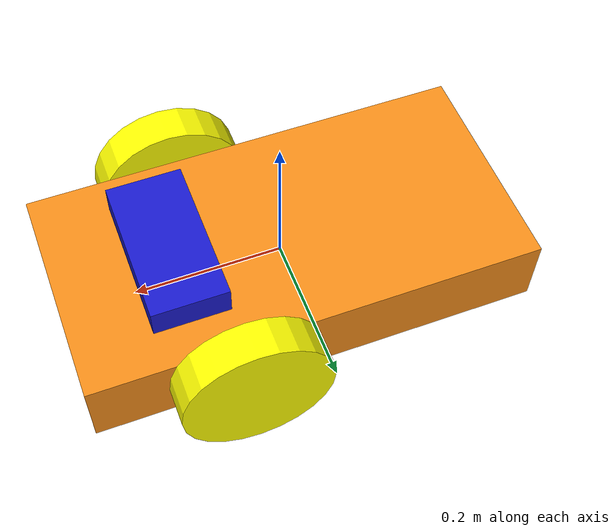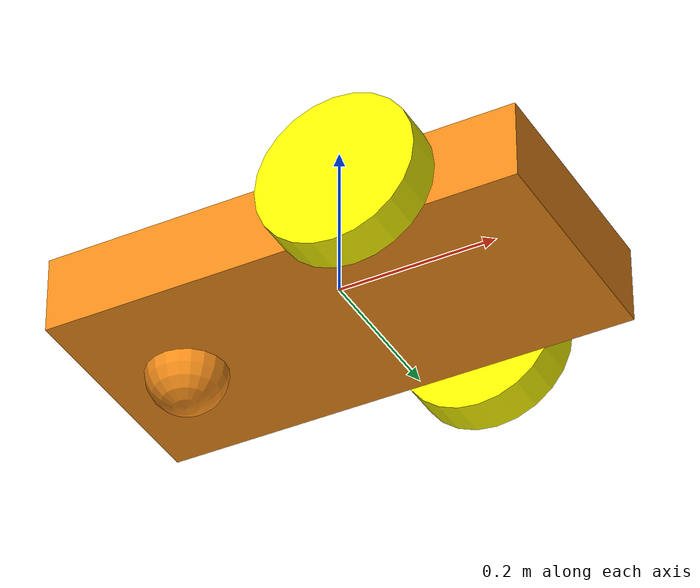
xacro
<?xml version='1.0'?>

<!-- This is a URDF description file of a mobile robot, written by Muhammad Asem, m7mad3asem@gmail.com
It models: 1-Chassis with Caster Wheel 2-Left wheel 3-right Wheel  4-Kinect /-->

<robot xmlns:xacro="http://www.ros.org/wiki/xacro" name="rover">
    <xacro:include filename="$(find mybot_description)/urdf/mybot.gazebo" />

<!-- +++++++++++++++++++++++Robot Definition+++++++++++++++++++++++++ /-->

<!--Chassis & Caster Link /-->

 <link name='chassis'>

   <visual name='chassis_visual'>

      <origin xyz="0 0 0" rpy=" 0 0 0"/>

      <geometry>
        <box size=".6 .3 .1"/>
      </geometry>

    </visual>

   <inertial>

      <mass value="10.0"/>
      <origin xyz="0 0 0" rpy=" 0 0 0"/>
      <inertia
          ixx="0.5" ixy="0" ixz="0"
          iyy="1.0" iyz="0"
          izz="0.1"
      />

   </inertial>

   <collision name='collision'>
      <geometry>
        <box size=".6 .3 .1"/>
      </geometry>
   </collision>

 <collision name='caster_collision'>
    <origin xyz="-0.2 0 -0.05" rpy=" 0 0 0"/>

    <geometry>
        <sphere radius="0.05"/>
    </geometry>

    <surface>

        <friction>
          <ode>
            <mu>0</mu>
            <mu2>0</mu2>
            <slip1>1.0</slip1>
            <slip2>1.0</slip2>
          </ode>
        </friction>

     </surface>

 </collision>

<visual name='caster_visual'>

     <origin xyz="-0.2 0 -0.05" rpy=" 0 0 0"/>

     <geometry>
      <sphere radius="0.05"/>
     </geometry>

</visual>

</link>

<!-- ++++++++++++++++Left wheel+++++++++++++++++++++++++++++++ /-->

<!--left wheel Joint /-->

  <joint type="continuous" name="left_wheel_hinge">
    <origin xyz="0.1 0.175 0" rpy="0 0 0"/>
    <child link="left_wheel"/>
    <parent link="chassis"/>
    <axis xyz="0 1 0" rpy="0 0 0"/>
    <limit effort="100" velocity="100"/>
    <joint_properties damping="0.0" friction="0.0"/>
  </joint>

<!--left wheel Link /-->

 <link name="left_wheel">

    <visual name="left_wheel_visual">
      <origin xyz="0 0 0" rpy="0 1.5707 1.5707"/>
      <geometry>
        <cylinder radius="0.1" length="0.05"/>
      </geometry>
      <material name="yellow">
        <color rgba="1 1 0 1" />
      </material>
    </visual>

    <collision name="collision">
      <origin xyz="0 0 0" rpy="0 1.5707 1.5707"/>
      <geometry>
        <cylinder radius="0.1" length="0.05"/>
      </geometry>
    </collision>

    <inertial>
      <origin xyz="0 0 0" rpy="0 1.5707 1.5707"/>
      <mass value="5"/>
      <cylinder_inertia m="5" r="0.1" h="0.05"/>
      <inertia
        ixx="1.0" ixy="0.0" ixz="0.0"
        iyy="1.0" iyz="0.0"
        izz="1.0"/>
    </inertial>

 </link>

<!-- +++++++++++++++++++ Right Wheel +++++++++++++++++++++++++++++++++ /-->

<!--Right wheel joint/-->
  <joint type="continuous" name="right_wheel_hinge">

    <origin xyz="0.1 -0.175 0" rpy="0 0 0"/>

    <child link="right_wheel"/>
    <parent link="chassis"/>

    <axis xyz="0 1 0" rpy="0 0 0"/>

    <limit effort="100" velocity="100"/>

    <joint_properties damping="0.0" friction="0.0"/>

  </joint>

<!--Right Wheel link /-->

  <link name="right_wheel">

    <visual name="right_wheel_visual">

      <origin xyz="0 0 0" rpy="0 1.5707 1.5707"/>

      <geometry>
        <cylinder radius="0.1" length="0.05"/>
      </geometry>
      <material name="yellow">
        <color rgba="1 1 0 1" />
      </material>
    </visual>

    <collision name="collision">

      <origin xyz="0 0 0" rpy="0 1.5707 1.5707"/>

      <geometry>
        <cylinder radius="0.1" length="0.05"/>
      </geometry>

    </collision>

    <inertial>

      <origin xyz="0 0 0" rpy="0 1.5707 1.5707"/>
      <mass value="5"/>
      <cylinder_inertia m="5" r="0.1" h="0.05"/>

      <inertia
        ixx="1.0" ixy="0.0" ixz="0.0"
        iyy="1.0" iyz="0.0"
        izz="1.0"/>
      </inertial>

  </link>

<!-- Lidar -->

<!-- ++++++++++++++++++  Kinect  +++++++++++++++++++++++++++++ /-->
<!--kinect joint /-->

<joint name="kinect_joint" type="fixed">

    <origin xyz=".15 0 .025" rpy="0 0 0"/>

    <parent link="chassis"/>
    <child link="camera_link"/>

</joint>

<!--Kinect  Link /-->

<link name="camera_link">

 <visual>

      <origin xyz="0 0 0.05" rpy="0 0 0"/>

      <geometry>
            <box size="0.1 0.2 0.04"/>

      </geometry>
       <material name="camera_material">
            <color rgba="0.1 0.1 0.8 1.0"/>
        </material>

 </visual>

 <collision>
    <origin xyz="0 0 0" rpy="0 0 0"/>

    <geometry>
    <box size="0.1 0.1 0.1"/>
    </geometry>

 </collision>

 <inertial>
     <mass value="1e-5" />
     <origin xyz="0 0 0" rpy="0 0 0"/>
     <inertia ixx="1e-6" ixy="0" ixz="0" iyy="1e-6" iyz="0" izz="1e-6" />
 </inertial>

</link>

<!--  Kinect Optical Link and joints   /-->

<joint name="kinect_optical_joint" type="fixed">

<!-- To invert the coordinates from image convention (Z is forward) to normal xyz /-->

<origin xyz="0 0 0" rpy="-1.5707 0 -1.5707"/>
<parent link="camera_link"/>
<child link="kinect_optical"/>
</joint>

<!--Virtual link to project the images to, and then flip it to us as its joint is flipped  /-->

<link name="kinect_optical">
</link>

</robot>
